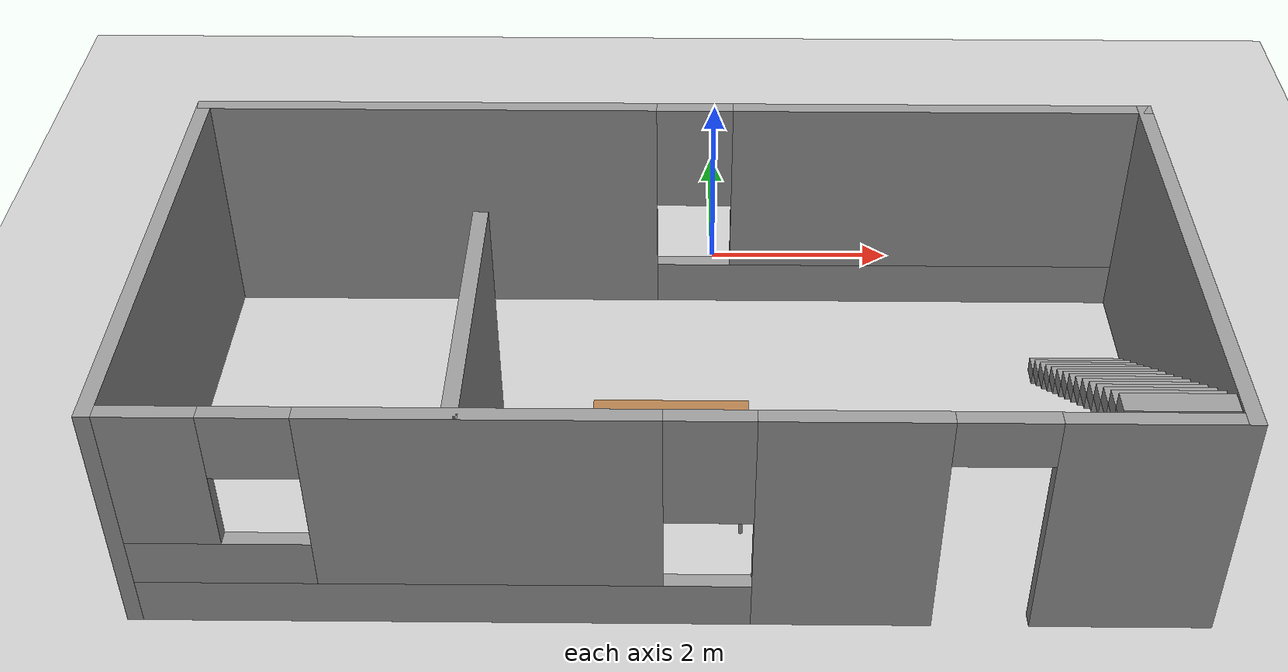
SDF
<sdf version="1.7">
 <world name="default">
  <light name="sun" type="directional">
   <pose>0 0 10 0 -0 0</pose>
   <diffuse>0.8 0.8 0.8 1</diffuse>
   <specular>0.2 0.2 0.2 1</specular>
   <attenuation>
    <range>1000</range>
    <constant>0.9</constant>
    <linear>0.01</linear>
    <quadratic>0.001</quadratic>
   </attenuation>
   <direction>-0.5 0.1 -0.9</direction>
   <spot><inner_angle>0</inner_angle><outer_angle>0</outer_angle><falloff>0</falloff></spot>
  </light>
  <model name="ground_plane">
   <static>1</static>
   <link name="link">
    <collision name="collision">
     <geometry><plane><normal>0 0 1</normal><size>100 100</size></plane></geometry>
     <surface><friction><ode><mu>100</mu><mu2>50</mu2></ode></friction></surface>
    </collision>
    <visual name="visual">
     <cast_shadows>0</cast_shadows>
     <geometry><plane><normal>0 0 1</normal><size>100 100</size></plane></geometry>
     <material>
      <script><uri>file://media/materials/scripts/gazebo.material</uri><name>Gazebo/Grey</name></script>
     </material>
    </visual>
   </link>
  </model>
  <gravity>0 0 -9.8</gravity>
  <magnetic_field>6e-06 2.3e-05 -4.2e-05</magnetic_field>
  <atmosphere type="adiabatic"/>
  <physics type="ode">
   <max_step_size>0.001</max_step_size>
   <real_time_factor>1</real_time_factor>
   <real_time_update_rate>1000</real_time_update_rate>
  </physics>
  <scene><ambient>0.4 0.4 0.4 1</ambient><background>0.7 0.7 0.7 1</background><shadows>1</shadows></scene>
  <spherical_coordinates>
   <surface_model>EARTH_WGS84</surface_model>
   <latitude_deg>0</latitude_deg>
   <longitude_deg>0</longitude_deg>
   <elevation>0</elevation>
   <heading_deg>0</heading_deg>
  </spherical_coordinates>
  <model name="HouseFrame">
   <pose>-0.445 -2.8575 0 0 -0 0</pose>
   <link name="Stairs_0">
    <visual name="Stairs_0_Visual_0">
     <pose>4.33317 0.692459 0.083333 0 -0 0</pose>
     <geometry><box><size>1 0.233333 0.166667</size></box></geometry>
     <material>
      <script><uri>file://media/materials/scripts/gazebo.material</uri><name>Gazebo/Grey</name></script>
      <ambient>1 1 1 1</ambient>
     </material>
     <meta><layer>0</layer></meta>
    </visual>
    <collision name="Stairs_0_Collision_0">
     <geometry><box><size>1 0.233333 0.166667</size></box></geometry>
     <pose>4.33317 0.692459 0.083333 0 -0 0</pose>
    </collision>
    <visual name="Stairs_0_Visual_1">
     <pose>4.33317 0.459125 0.25 0 -0 0</pose>
     <geometry><box><size>1 0.233333 0.166667</size></box></geometry>
     <material>
      <script><uri>file://media/materials/scripts/gazebo.material</uri><name>Gazebo/Grey</name></script>
      <ambient>1 1 1 1</ambient>
     </material>
     <meta><layer>0</layer></meta>
    </visual>
    <collision name="Stairs_0_Collision_1">
     <geometry><box><size>1 0.233333 0.166667</size></box></geometry>
     <pose>4.33317 0.459125 0.25 0 -0 0</pose>
    </collision>
    <visual name="Stairs_0_Visual_2">
     <pose>4.33317 0.225792 0.416667 0 -0 0</pose>
     <geometry><box><size>1 0.233333 0.166667</size></box></geometry>
     <material>
      <script><uri>file://media/materials/scripts/gazebo.material</uri><name>Gazebo/Grey</name></script>
      <ambient>1 1 1 1</ambient>
     </material>
     <meta><layer>0</layer></meta>
    </visual>
    <collision name="Stairs_0_Collision_2">
     <geometry><box><size>1 0.233333 0.166667</size></box></geometry>
     <pose>4.33317 0.225792 0.416667 0 -0 0</pose>
    </collision>
    <visual name="Stairs_0_Visual_3">
     <pose>4.33317 -0.007541 0.583333 0 -0 0</pose>
     <geometry><box><size>1 0.233333 0.166667</size></box></geometry>
     <material>
      <script><uri>file://media/materials/scripts/gazebo.material</uri><name>Gazebo/Grey</name></script>
      <ambient>1 1 1 1</ambient>
     </material>
     <meta><layer>0</layer></meta>
    </visual>
    <collision name="Stairs_0_Collision_3">
     <geometry><box><size>1 0.233333 0.166667</size></box></geometry>
     <pose>4.33317 -0.007541 0.583333 0 -0 0</pose>
    </collision>
    <visual name="Stairs_0_Visual_4">
     <pose>4.33317 -0.240875 0.75 0 -0 0</pose>
     <geometry><box><size>1 0.233333 0.166667</size></box></geometry>
     <material>
      <script><uri>file://media/materials/scripts/gazebo.material</uri><name>Gazebo/Grey</name></script>
      <ambient>1 1 1 1</ambient>
     </material>
     <meta><layer>0</layer></meta>
    </visual>
    <collision name="Stairs_0_Collision_4">
     <geometry><box><size>1 0.233333 0.166667</size></box></geometry>
     <pose>4.33317 -0.240875 0.75 0 -0 0</pose>
    </collision>
    <visual name="Stairs_0_Visual_5">
     <pose>4.33317 -0.474208 0.916667 0 -0 0</pose>
     <geometry><box><size>1 0.233333 0.166667</size></box></geometry>
     <material>
      <script><uri>file://media/materials/scripts/gazebo.material</uri><name>Gazebo/Grey</name></script>
      <ambient>1 1 1 1</ambient>
     </material>
     <meta><layer>0</layer></meta>
    </visual>
    <collision name="Stairs_0_Collision_5">
     <geometry><box><size>1 0.233333 0.166667</size></box></geometry>
     <pose>4.33317 -0.474208 0.916667 0 -0 0</pose>
    </collision>
    <visual name="Stairs_0_Visual_6">
     <pose>4.33317 -0.707541 1.08333 0 -0 0</pose>
     <geometry><box><size>1 0.233333 0.166667</size></box></geometry>
     <material>
      <script><uri>file://media/materials/scripts/gazebo.material</uri><name>Gazebo/Grey</name></script>
      <ambient>1 1 1 1</ambient>
     </material>
     <meta><layer>0</layer></meta>
    </visual>
    <collision name="Stairs_0_Collision_6">
     <geometry><box><size>1 0.233333 0.166667</size></box></geometry>
     <pose>4.33317 -0.707541 1.08333 0 -0 0</pose>
    </collision>
    <visual name="Stairs_0_Visual_7">
     <pose>4.33317 -0.940875 1.25 0 -0 0</pose>
     <geometry><box><size>1 0.233333 0.166667</size></box></geometry>
     <material>
      <script><uri>file://media/materials/scripts/gazebo.material</uri><name>Gazebo/Grey</name></script>
      <ambient>1 1 1 1</ambient>
     </material>
     <meta><layer>0</layer></meta>
    </visual>
    <collision name="Stairs_0_Collision_7">
     <geometry><box><size>1 0.233333 0.166667</size></box></geometry>
     <pose>4.33317 -0.940875 1.25 0 -0 0</pose>
    </collision>
    <visual name="Stairs_0_Visual_8">
     <pose>4.33317 -1.17421 1.41667 0 -0 0</pose>
     <geometry><box><size>1 0.233333 0.166667</size></box></geometry>
     <material>
      <script><uri>file://media/materials/scripts/gazebo.material</uri><name>Gazebo/Grey</name></script>
      <ambient>1 1 1 1</ambient>
     </material>
     <meta><layer>0</layer></meta>
    </visual>
    <collision name="Stairs_0_Collision_8">
     <geometry><box><size>1 0.233333 0.166667</size></box></geometry>
     <pose>4.33317 -1.17421 1.41667 0 -0 0</pose>
    </collision>
    <visual name="Stairs_0_Visual_9">
     <pose>4.33317 -1.40754 1.58333 0 -0 0</pose>
     <geometry><box><size>1 0.233333 0.166667</size></box></geometry>
     <material>
      <script><uri>file://media/materials/scripts/gazebo.material</uri><name>Gazebo/Grey</name></script>
      <ambient>1 1 1 1</ambient>
     </material>
     <meta><layer>0</layer></meta>
    </visual>
    <collision name="Stairs_0_Collision_9">
     <geometry><box><size>1 0.233333 0.166667</size></box></geometry>
     <pose>4.33317 -1.40754 1.58333 0 -0 0</pose>
    </collision>
    <visual name="Stairs_0_Visual_10">
     <pose>4.33317 -1.64088 1.75 0 -0 0</pose>
     <geometry><box><size>1 0.233333 0.166667</size></box></geometry>
     <material>
      <script><uri>file://media/materials/scripts/gazebo.material</uri><name>Gazebo/Grey</name></script>
      <ambient>1 1 1 1</ambient>
     </material>
     <meta><layer>0</layer></meta>
    </visual>
    <collision name="Stairs_0_Collision_10">
     <geometry><box><size>1 0.233333 0.166667</size></box></geometry>
     <pose>4.33317 -1.64088 1.75 0 -0 0</pose>
    </collision>
    <visual name="Stairs_0_Visual_11">
     <pose>4.33317 -1.87421 1.91667 0 -0 0</pose>
     <geometry><box><size>1 0.233333 0.166667</size></box></geometry>
     <material>
      <script><uri>file://media/materials/scripts/gazebo.material</uri><name>Gazebo/Grey</name></script>
      <ambient>1 1 1 1</ambient>
     </material>
     <meta><layer>0</layer></meta>
    </visual>
    <collision name="Stairs_0_Collision_11">
     <geometry><box><size>1 0.233333 0.166667</size></box></geometry>
     <pose>4.33317 -1.87421 1.91667 0 -0 0</pose>
    </collision>
    <visual name="Stairs_0_Visual_12">
     <pose>4.33317 -2.10754 2.08333 0 -0 0</pose>
     <geometry><box><size>1 0.233333 0.166667</size></box></geometry>
     <material>
      <script><uri>file://media/materials/scripts/gazebo.material</uri><name>Gazebo/Grey</name></script>
      <ambient>1 1 1 1</ambient>
     </material>
     <meta><layer>0</layer></meta>
    </visual>
    <collision name="Stairs_0_Collision_12">
     <geometry><box><size>1 0.233333 0.166667</size></box></geometry>
     <pose>4.33317 -2.10754 2.08333 0 -0 0</pose>
    </collision>
    <visual name="Stairs_0_Visual_13">
     <pose>4.33317 -2.34088 2.25 0 -0 0</pose>
     <geometry><box><size>1 0.233333 0.166667</size></box></geometry>
     <material>
      <script><uri>file://media/materials/scripts/gazebo.material</uri><name>Gazebo/Grey</name></script>
      <ambient>1 1 1 1</ambient>
     </material>
     <meta><layer>0</layer></meta>
    </visual>
    <collision name="Stairs_0_Collision_13">
     <geometry><box><size>1 0.233333 0.166667</size></box></geometry>
     <pose>4.33317 -2.34088 2.25 0 -0 0</pose>
    </collision>
    <visual name="Stairs_0_Visual_14">
     <pose>4.33317 -2.57421 2.41667 0 -0 0</pose>
     <geometry><box><size>1 0.233333 0.166667</size></box></geometry>
     <material>
      <script><uri>file://media/materials/scripts/gazebo.material</uri><name>Gazebo/Grey</name></script>
      <ambient>1 1 1 1</ambient>
     </material>
     <meta><layer>0</layer></meta>
    </visual>
    <collision name="Stairs_0_Collision_14">
     <geometry><box><size>1 0.233333 0.166667</size></box></geometry>
     <pose>4.33317 -2.57421 2.41667 0 -0 0</pose>
    </collision>
   </link>
   <link name="Wall_0">
    <collision name="Wall_0_Collision">
     <geometry><box><size>5 0.15 2.5</size></box></geometry>
     <pose>0 0 1.25 0 -0 0</pose>
    </collision>
    <visual name="Wall_0_Visual">
     <pose>0 0 1.25 0 -0 0</pose>
     <geometry><box><size>5 0.15 2.5</size></box></geometry>
     <material>
      <script><uri>file://media/materials/scripts/gazebo.material</uri><name>Gazebo/Grey</name></script>
      <ambient>1 1 1 1</ambient>
     </material>
     <meta><layer>0</layer></meta>
    </visual>
    <pose>-4.925 -0.3575 0 0 -0 1.5708</pose>
   </link>
   <link name="Wall_1">
    <pose>-0 2.0675 0 0 -0 0</pose>
    <visual name="Wall_1_Visual_0">
     <pose>-2.58841 0 1.25 0 -0 0</pose>
     <geometry><box><size>4.82317 0.15 2.5</size></box></geometry>
     <material>
      <script><uri>file://media/materials/scripts/gazebo.material</uri><name>Gazebo/Grey</name></script>
      <ambient>1 1 1 1</ambient>
     </material>
     <meta><layer>0</layer></meta>
    </visual>
    <collision name="Wall_1_Collision_0">
     <geometry><box><size>4.82317 0.15 2.5</size></box></geometry>
     <pose>-2.58841 0 1.25 0 -0 0</pose>
    </collision>
    <visual name="Wall_1_Visual_1">
     <pose>2.41159 0 0.25 0 -0 0</pose>
     <geometry><box><size>5.17683 0.15 0.5</size></box></geometry>
     <material>
      <script><uri>file://media/materials/scripts/gazebo.material</uri><name>Gazebo/Grey</name></script>
      <ambient>1 1 1 1</ambient>
     </material>
     <meta><layer>0</layer></meta>
    </visual>
    <collision name="Wall_1_Collision_1">
     <geometry><box><size>5.17683 0.15 0.5</size></box></geometry>
     <pose>2.41159 0 0.25 0 -0 0</pose>
    </collision>
    <visual name="Wall_1_Visual_2">
     <pose>2.81159 0 1.5 0 -0 0</pose>
     <geometry><box><size>4.37683 0.15 2</size></box></geometry>
     <material>
      <script><uri>file://media/materials/scripts/gazebo.material</uri><name>Gazebo/Grey</name></script>
      <ambient>1 1 1 1</ambient>
     </material>
     <meta><layer>0</layer></meta>
    </visual>
    <collision name="Wall_1_Collision_2">
     <geometry><box><size>4.37683 0.15 2</size></box></geometry>
     <pose>2.81159 0 1.5 0 -0 0</pose>
    </collision>
    <visual name="Wall_1_Visual_3">
     <pose>0.223175 0 1.9 0 -0 0</pose>
     <geometry><box><size>0.8 0.15 1.2</size></box></geometry>
     <material>
      <script><uri>file://media/materials/scripts/gazebo.material</uri><name>Gazebo/Grey</name></script>
      <ambient>1 1 1 1</ambient>
     </material>
     <meta><layer>0</layer></meta>
    </visual>
    <collision name="Wall_1_Collision_3">
     <geometry><box><size>0.8 0.15 1.2</size></box></geometry>
     <pose>0.223175 0 1.9 0 -0 0</pose>
    </collision>
   </link>
   <link name="Wall_2">
    <collision name="Wall_2_Collision">
     <geometry><box><size>5 0.15 2.5</size></box></geometry>
     <pose>0 0 1.25 0 -0 0</pose>
    </collision>
    <visual name="Wall_2_Visual">
     <pose>0 0 1.25 0 -0 0</pose>
     <geometry><box><size>5 0.15 2.5</size></box></geometry>
     <material>
      <script><uri>file://media/materials/scripts/gazebo.material</uri><name>Gazebo/Grey</name></script>
      <ambient>1 1 1 1</ambient>
     </material>
     <meta><layer>0</layer></meta>
    </visual>
    <pose>4.925 -0.3575 0 0 -0 -1.5708</pose>
   </link>
   <link name="Wall_3">
    <pose>-0 -2.7825 0 0 -0 3.14159</pose>
    <visual name="Wall_3_Visual_0">
     <pose>-4.1575 0 1.25 0 -0 0</pose>
     <geometry><box><size>1.685 0.15 2.5</size></box></geometry>
     <material>
      <script><uri>file://media/materials/scripts/gazebo.material</uri><name>Gazebo/Grey</name></script>
      <ambient>1 1 1 1</ambient>
     </material>
     <meta><layer>0</layer></meta>
    </visual>
    <collision name="Wall_3_Collision_0">
     <geometry><box><size>1.685 0.15 2.5</size></box></geometry>
     <pose>-4.1575 0 1.25 0 -0 0</pose>
    </collision>
    <visual name="Wall_3_Visual_1">
     <pose>-1.58409 0 1.25 0 -0 0</pose>
     <geometry><box><size>1.66183 0.15 2.5</size></box></geometry>
     <material>
      <script><uri>file://media/materials/scripts/gazebo.material</uri><name>Gazebo/Grey</name></script>
      <ambient>1 1 1 1</ambient>
     </material>
     <meta><layer>0</layer></meta>
    </visual>
    <collision name="Wall_3_Collision_1">
     <geometry><box><size>1.66183 0.15 2.5</size></box></geometry>
     <pose>-1.58409 0 1.25 0 -0 0</pose>
    </collision>
    <visual name="Wall_3_Visual_2">
     <pose>2.12341 0 0.25 0 -0 0</pose>
     <geometry><box><size>5.75317 0.15 0.5</size></box></geometry>
     <material>
      <script><uri>file://media/materials/scripts/gazebo.material</uri><name>Gazebo/Grey</name></script>
      <ambient>1 1 1 1</ambient>
     </material>
     <meta><layer>0</layer></meta>
    </visual>
    <collision name="Wall_3_Collision_2">
     <geometry><box><size>5.75317 0.15 0.5</size></box></geometry>
     <pose>2.12341 0 0.25 0 -0 0</pose>
    </collision>
    <visual name="Wall_3_Visual_3">
     <pose>1.61183 0 1.5 0 -0 0</pose>
     <geometry><box><size>3.13 0.15 2</size></box></geometry>
     <material>
      <script><uri>file://media/materials/scripts/gazebo.material</uri><name>Gazebo/Grey</name></script>
      <ambient>1 1 1 1</ambient>
     </material>
     <meta><layer>0</layer></meta>
    </visual>
    <collision name="Wall_3_Collision_3">
     <geometry><box><size>3.13 0.15 2</size></box></geometry>
     <pose>1.61183 0 1.5 0 -0 0</pose>
    </collision>
    <visual name="Wall_3_Visual_4">
     <pose>4.08841 0 0.75 0 -0 0</pose>
     <geometry><box><size>1.82317 0.15 0.5</size></box></geometry>
     <material>
      <script><uri>file://media/materials/scripts/gazebo.material</uri><name>Gazebo/Grey</name></script>
      <ambient>1 1 1 1</ambient>
     </material>
     <meta><layer>0</layer></meta>
    </visual>
    <collision name="Wall_3_Collision_4">
     <geometry><box><size>1.82317 0.15 0.5</size></box></geometry>
     <pose>4.08841 0 0.75 0 -0 0</pose>
    </collision>
    <visual name="Wall_3_Visual_5">
     <pose>4.48841 0 1.75 0 -0 0</pose>
     <geometry><box><size>1.02317 0.15 1.5</size></box></geometry>
     <material>
      <script><uri>file://media/materials/scripts/gazebo.material</uri><name>Gazebo/Grey</name></script>
      <ambient>1 1 1 1</ambient>
     </material>
     <meta><layer>0</layer></meta>
    </visual>
    <collision name="Wall_3_Collision_5">
     <geometry><box><size>1.02317 0.15 1.5</size></box></geometry>
     <pose>4.48841 0 1.75 0 -0 0</pose>
    </collision>
    <visual name="Wall_3_Visual_6">
     <pose>-0.353175 0 1.9 0 -0 0</pose>
     <geometry><box><size>0.8 0.15 1.2</size></box></geometry>
     <material>
      <script><uri>file://media/materials/scripts/gazebo.material</uri><name>Gazebo/Grey</name></script>
      <ambient>1 1 1 1</ambient>
     </material>
     <meta><layer>0</layer></meta>
    </visual>
    <collision name="Wall_3_Collision_6">
     <geometry><box><size>0.8 0.15 1.2</size></box></geometry>
     <pose>-0.353175 0 1.9 0 -0 0</pose>
    </collision>
    <visual name="Wall_3_Visual_7">
     <pose>3.57682 0 2.15 0 -0 0</pose>
     <geometry><box><size>0.8 0.15 0.7</size></box></geometry>
     <material>
      <script><uri>file://media/materials/scripts/gazebo.material</uri><name>Gazebo/Grey</name></script>
      <ambient>1 1 1 1</ambient>
     </material>
     <meta><layer>0</layer></meta>
    </visual>
    <collision name="Wall_3_Collision_7">
     <geometry><box><size>0.8 0.15 0.7</size></box></geometry>
     <pose>3.57682 0 2.15 0 -0 0</pose>
    </collision>
    <visual name="Wall_3_Visual_8">
     <pose>-2.865 0 2.25 0 -0 0</pose>
     <geometry><box><size>0.9 0.15 0.5</size></box></geometry>
     <material>
      <script><uri>file://media/materials/scripts/gazebo.material</uri><name>Gazebo/Grey</name></script>
      <ambient>1 1 1 1</ambient>
     </material>
     <meta><layer>0</layer></meta>
    </visual>
    <collision name="Wall_3_Collision_8">
     <geometry><box><size>0.9 0.15 0.5</size></box></geometry>
     <pose>-2.865 0 2.25 0 -0 0</pose>
    </collision>
   </link>
   <link name="Wall_5">
    <collision name="Wall_5_Collision">
     <geometry><box><size>3 0.15 2.5</size></box></geometry>
     <pose>0 0 1.25 0 -0 0</pose>
    </collision>
    <visual name="Wall_5_Visual">
     <pose>0 0 1.25 0 -0 0</pose>
     <geometry><box><size>3 0.15 2.5</size></box></geometry>
     <material>
      <script><uri>file://media/materials/scripts/gazebo.material</uri><name>Gazebo/Grey</name></script>
      <ambient>1 1 1 1</ambient>
     </material>
     <meta><layer>0</layer></meta>
    </visual>
    <pose>-1.845 -1.3475 0 0 -0 1.5708</pose>
   </link>
   <static>1</static>
  </model>
  <model name="table">
   <static>1</static>
   <link name="link">
    <collision name="surface">
     <pose>0 0 1 0 -0 0</pose>
     <geometry><box><size>1.5 0.8 0.03</size></box></geometry>
     <surface><friction><ode><mu>0.6</mu><mu2>0.6</mu2></ode></friction></surface>
    </collision>
    <visual name="visual1">
     <pose>0 0 1 0 -0 0</pose>
     <geometry><box><size>1.5 0.8 0.03</size></box></geometry>
     <material>
      <script><uri>file://media/materials/scripts/gazebo.material</uri><name>Gazebo/Wood</name></script>
     </material>
    </visual>
    <collision name="front_left_leg">
     <pose>0.68 0.38 0.5 0 -0 0</pose>
     <geometry><cylinder><radius>0.02</radius><length>1</length></cylinder></geometry>
    </collision>
    <visual name="front_left_leg">
     <pose>0.68 0.38 0.5 0 -0 0</pose>
     <geometry><cylinder><radius>0.02</radius><length>1</length></cylinder></geometry>
     <material>
      <script><uri>file://media/materials/scripts/gazebo.material</uri><name>Gazebo/Grey</name></script>
     </material>
    </visual>
    <collision name="front_right_leg">
     <pose>0.68 -0.38 0.5 0 -0 0</pose>
     <geometry><cylinder><radius>0.02</radius><length>1</length></cylinder></geometry>
    </collision>
    <visual name="front_right_leg">
     <pose>0.68 -0.38 0.5 0 -0 0</pose>
     <geometry><cylinder><radius>0.02</radius><length>1</length></cylinder></geometry>
     <material>
      <script><uri>file://media/materials/scripts/gazebo.material</uri><name>Gazebo/Grey</name></script>
     </material>
    </visual>
    <collision name="back_right_leg">
     <pose>-0.68 -0.38 0.5 0 -0 0</pose>
     <geometry><cylinder><radius>0.02</radius><length>1</length></cylinder></geometry>
    </collision>
    <visual name="back_right_leg">
     <pose>-0.68 -0.38 0.5 0 -0 0</pose>
     <geometry><cylinder><radius>0.02</radius><length>1</length></cylinder></geometry>
     <material>
      <script><uri>file://media/materials/scripts/gazebo.material</uri><name>Gazebo/Grey</name></script>
     </material>
    </visual>
    <collision name="back_left_leg">
     <pose>-0.68 0.38 0.5 0 -0 0</pose>
     <geometry><cylinder><radius>0.02</radius><length>1</length></cylinder></geometry>
    </collision>
    <visual name="back_left_leg">
     <pose>-0.68 0.38 0.5 0 -0 0</pose>
     <geometry><cylinder><radius>0.02</radius><length>1</length></cylinder></geometry>
     <material>
      <script><uri>file://media/materials/scripts/gazebo.material</uri><name>Gazebo/Grey</name></script>
     </material>
    </visual>
   </link>
   <pose>-0.440222 -4.15116 0 0 -0 0</pose>
  </model>
 </world>
</sdf>
